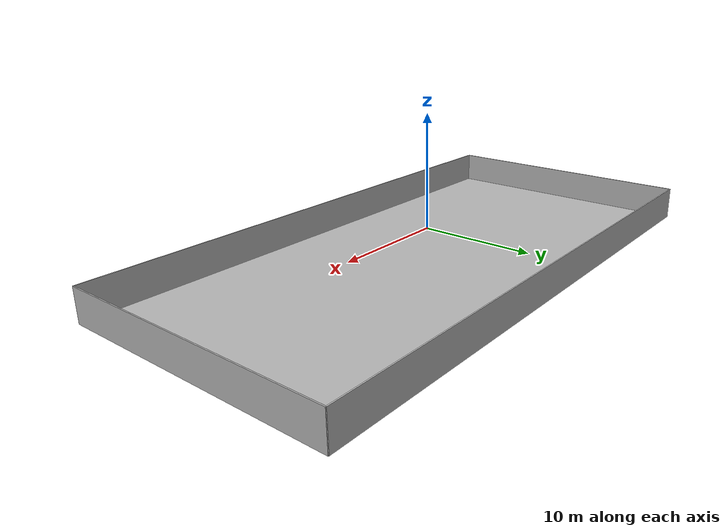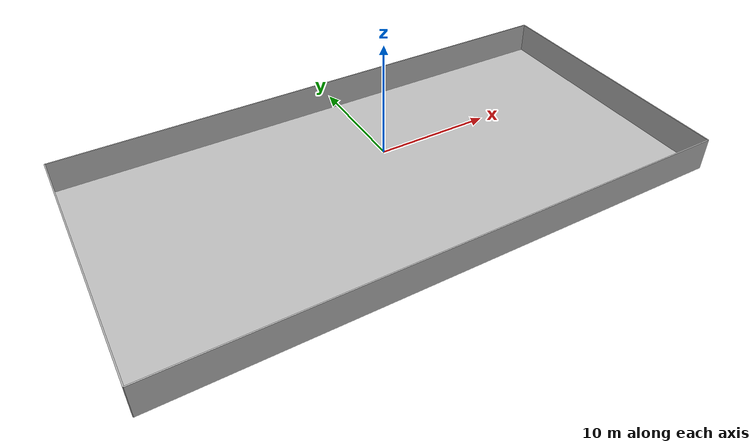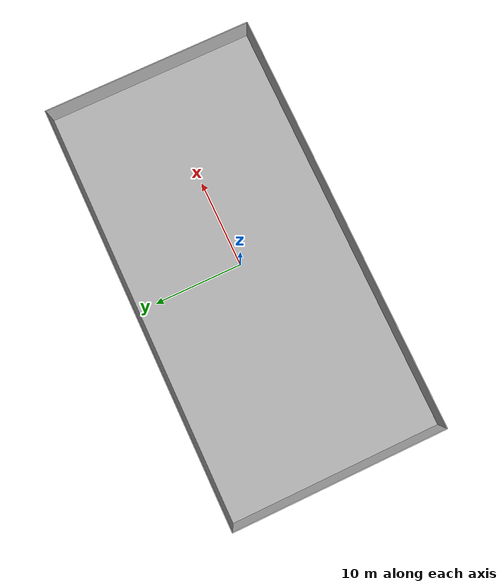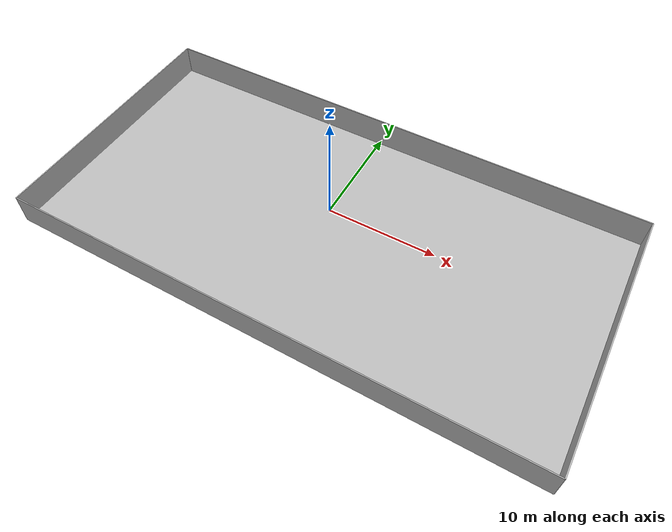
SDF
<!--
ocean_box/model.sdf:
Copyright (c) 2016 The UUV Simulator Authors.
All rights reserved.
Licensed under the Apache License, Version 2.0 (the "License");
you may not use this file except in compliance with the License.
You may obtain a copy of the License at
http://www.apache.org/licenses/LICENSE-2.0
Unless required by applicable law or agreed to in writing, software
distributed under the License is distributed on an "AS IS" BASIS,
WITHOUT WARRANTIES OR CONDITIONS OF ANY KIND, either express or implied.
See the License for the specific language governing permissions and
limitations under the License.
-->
<sdf version="1.5">
 <world name="empty_underwater">
  <physics name="default_physics" default="true" type="ode">
   <max_step_size>0.002</max_step_size>
   <real_time_factor>1</real_time_factor>
   <real_time_update_rate>500</real_time_update_rate>
   <ode><solver><type>quick</type><iters>50</iters><sor>0.5</sor></solver></ode>
  </physics>
  <scene>
   <ambient>0.01 0.01 0.01 1.0</ambient>
   <sky><clouds><speed>12</speed></clouds></sky>
   <shadows>1</shadows>
   <fog>
    <color>0.1 0.2 0.3 1.0</color>
    <type>linear</type>
    <density>0.001</density>
    <start>10</start>
    <end>200</end>
   </fog>
  </scene>
  <spherical_coordinates>
   <latitude_deg>56.71897669633431</latitude_deg>
   <longitude_deg>3.515625</longitude_deg>
  </spherical_coordinates>
  <include><uri>model://sun</uri></include>
  <include><uri>file://ocean_box</uri></include>
  <plugin name="underwater_world" filename="libuuv_underwater_world_ros_plugin.so">
   <namespace>hydrodynamics</namespace>
   <constant_current>
    <topic>current_velocity</topic>
    <velocity><mean>0</mean><min>-5</min><max>5</max><mu>0.0</mu><noiseAmp>0.0</noiseAmp></velocity>
    <horizontal_angle>
     <mean>0</mean>
     <min>-3.141592653589793238</min>
     <max>3.141592653589793238</max>
     <mu>0.0</mu>
     <noiseAmp>0.0</noiseAmp>
    </horizontal_angle>
    <vertical_angle>
     <mean>0</mean>
     <min>-3.141592653589793238</min>
     <max>3.141592653589793238</max>
     <mu>0.0</mu>
     <noiseAmp>0.0</noiseAmp>
    </vertical_angle>
   </constant_current>
  </plugin>
 </world>
</sdf>

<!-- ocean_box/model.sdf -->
<sdf version="1.5">
  <model name="ocean_box">
    <static>true</static>
    <link name="link">
      <visual name="ground">
        <cast_shadows>false</cast_shadows>
        <pose>0 0 -3 0 0 0</pose>
        <geometry>
          <box>
            <size>50 25 .1</size>
          </box>
        </geometry>
        <material>
          <script>
            <uri>file://Media/materials/scripts/sand.material</uri>
            <name>UUVSimulator/SandAndStones</name>
          </script>
        </material>
      </visual>

      <collision name="ground">
        <pose>0 0 -3 0 0 0</pose>
        <geometry>
          <box>
            <size>50 25 .1</size>
          </box>
        </geometry>
      </collision>

      <visual name="north">
        <cast_shadows>false</cast_shadows>
        <pose>25 0 -1.50 0 0 0</pose>
        <geometry>
          <box>
            <size>.1 25 3</size>
          </box>
        </geometry>
        <material>
          <script>
            <uri>file://Media/materials/scripts/water.material</uri>
            <name>UUVSimulator/SeaWall</name>
          </script>
        </material>
      </visual>

      <visual name="south">
        <cast_shadows>false</cast_shadows>
        <pose>-25 0 -1.50 0 0 0</pose>
        <geometry>
          <box>
            <size>.1 25 3</size>
          </box>
        </geometry>
        <material>
          <script>
            <uri>file://Media/materials/scripts/water.material</uri>
            <name>UUVSimulator/SeaWall</name>
          </script>
        </material>
      </visual>

      <visual name="east">
        <cast_shadows>false</cast_shadows>
        <pose>0 -12.5 -1.5 0 0 0</pose>
        <geometry>
          <box>
            <size>50 .1 3</size>
          </box>
        </geometry>
        <material>
          <script>
            <uri>file://Media/materials/scripts/water.material</uri>
            <name>UUVSimulator/SeaWall</name>
          </script>
        </material>
      </visual>

      <visual name="west">
        <cast_shadows>false</cast_shadows>
        <pose>0 12.5 -1.5 0 0 0</pose>
        <geometry>
          <box>
            <size>50 .1 3</size>
          </box>
        </geometry>
        <material>
          <script>
            <uri>file://Media/materials/scripts/water.material</uri>
            <name>UUVSimulator/SeaWall</name>
          </script>
        </material>
      </visual>
    </link>
  </model>
</sdf>
